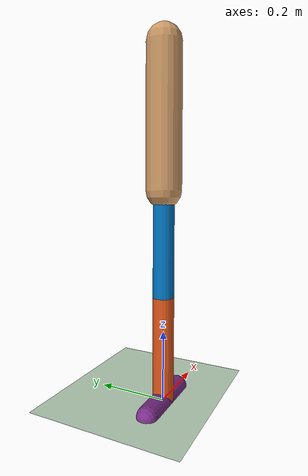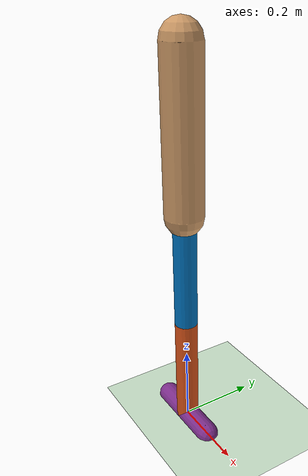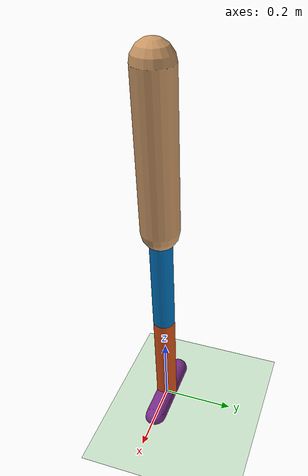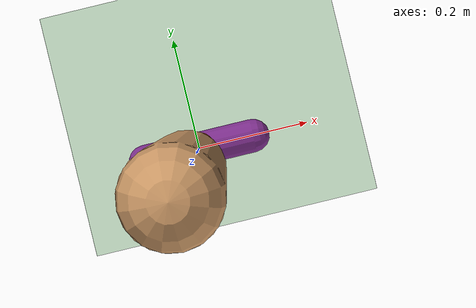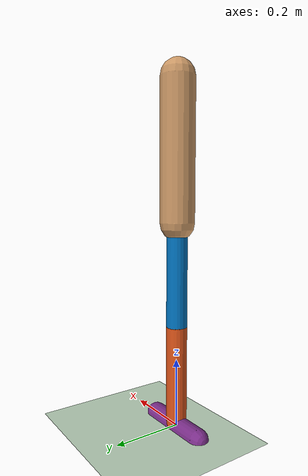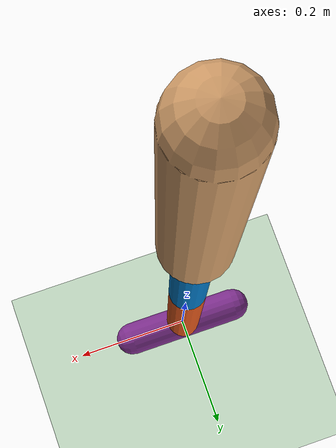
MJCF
<mujoco model="biped_2d">
    <compiler angle="degree" coordinate="local" inertiafromgeom="auto"/>
    <default>
        <joint armature="0" damping="0.0" limited="true" solimplimit="0 .8 .03" solreflimit=".02 1" stiffness="0"/>
        <geom conaffinity="0" condim="3" contype="1" friction=".9 .1 .1" rgba="0.8 0.6 .4 1" solimp="0.0 0.8 0.01"
              solref="0.02 1"/>
        <motor ctrllimited="true" ctrlrange="-1 1"/>
    </default>
    <size nstack="300000" nuser_geom="1"/>
    <option gravity="0 0 -9.81" timestep="0.002"/>
    <asset>
        <texture builtin="gradient" height="100" rgb1="1 1 1" rgb2="0 0 0" type="skybox" width="100"/>
        <texture builtin="flat" height="1278" mark="cross" markrgb="1 1 1" name="texgeom" random="0.01"
                 rgb1="0.8 0.6 0.4" rgb2="0.8 0.6 0.4" type="cube" width="127"/>
        <texture builtin="checker" height="100" name="texplane" rgb1="0 0 0" rgb2="0.8 0.8 0.8" type="2d" width="100"/>
        <material name="MatPlane" reflectance="0.5" shininess="1" specular="1" texrepeat="60 60" texture="texplane"/>
        <material name="geom" texture="texgeom" texuniform="true"/>
    </asset>
    <worldbody>
        <light cutoff="100" diffuse="1 1 1" dir="-0 0 -1.3" directional="true" exponent="1" pos="0 0 1.3"
               specular=".1 .1 .1"/>
        <geom conaffinity="1" condim="3" material="MatPlane" name="floor" pos="0 0 0" rgba="0.8 0.9 0.8 1"
              size="60 60 60" type="plane"/>
        <body name="torso" pos="0 0 0.6">
            <camera name="track" mode="trackcom" pos="0 -3 0.3" xyaxes="1 0 0 0 0 1"/>
            <joint armature="0" axis="1 0 0" damping="0" limited="false" name="rootx" pos="0 0 0" stiffness="0"
                   type="slide"/>
            <joint armature="0" axis="0 0 1" damping="0" limited="false" name="rootz" pos="0 0 0" stiffness="0"
                   type="slide"/>
            <joint armature="0" axis="0 -1 0" damping="0" limited="false" name="rooty" pos="0 0 0" stiffness="0"
                   type="hinge"/>
            <inertial pos="0 0 0.2" mass="12" diaginertia="0.1675 0.1675 0.015"/>
            <geom fromto="0 0 0 0 0 0.4" name="torso" size="0.05" type="capsule"/>
            <body name="lthigh" pos="0 0 0">
                <joint axis="0 -1 0" damping="0.0" name="lthigh" pos="0 0 0" range="-45 135" stiffness="0"
                       type="hinge"/>
                <inertial pos="0 0 -0.15" mass="0.5" diaginertia="0.0039 0.0039 0.000225"/>
                <geom axisangle="0 -1 0 0" name="lthigh" pos="0 0 -0.15" rgba="0 0.4470 0.7410 1"
                      size="0.03 0.15" type="capsule"/>
                <body name="lshin" pos="0 0 -0.3">
                    <joint axis="0 -1 0" damping="0.0" name="lshin" pos="0 0 0" range="-135 0" stiffness="0"
                           type="hinge"/>
                    <inertial pos="0 0 -0.15" mass="0.5" diaginertia="0.0039 0.0039 0.000225"/>
                    <geom axisangle="0 -1 0 0" name="lshin" pos="0 0 -0.15" rgba="0.8500 0.3250 0.0980 1"
                          size="0.03 0.15" type="capsule"/>
                    <body name="lfoot" pos="0 0 -0.3">
                        <joint axis="0 -1 0" damping="0.0" name="lfoot" pos="0 0 0" range="-50 50" stiffness="0"
                               type="hinge"/>
                        <inertial pos="0 0 0" axisangle="0 -1 0 90" mass="0.2" diaginertia="0.0007 0.0007 0.00009"/>
                        <geom axisangle="0 -1 0 90" name="lfoot" pos="0 0 0" rgba="0.4940  0.1840 0.5560 1"
                              size="0.03 0.10" type="capsule"/>
                    </body>
                </body>
            </body>
            <body name="rthigh" pos="0 0 0">
                <joint axis="0 -1 0" damping="0.0" name="rthigh" pos="0 0 0" range="-45 135" stiffness="0"
                       type="hinge"/>
                <inertial pos="0 0 -0.15" mass="0.5" diaginertia="0.0039 0.0039 0.000225"/>
                <geom axisangle="0 -1 0 0" name="rthigh" pos="0 0 -0.15" rgba="0.8500 0.3250 0.0980 1"
                      size="0.03 0.15" type="capsule"/>
                <body name="rshin" pos="0 0 -0.3">
                    <joint axis="0 -1 0" damping="0.0" name="rshin" pos="0 0 0" range="-135 0" stiffness="0"
                           type="hinge"/>
                    <inertial pos="0 0 -0.15" mass="0.5" diaginertia="0.0039 0.0039 0.000225"/>
                    <geom axisangle="0 -1 0 0" name="rshin" pos="0 0 -0.15" rgba="0.4940 0.1840 0.5560 1"
                          size="0.03 0.15" type="capsule"/>
                    <body name="rfoot" pos="0 0 -0.3">
                        <joint axis="0 -1 0" damping="0.0" name="rfoot" pos="0 0 0" range="-50 50" stiffness="0"
                               type="hinge"/>
                        <inertial pos="0 0 0" axisangle="0 -1 0 90" mass="0.2" diaginertia="0.0007 0.0007 0.00009"/>
                        <geom axisangle="0 -1 0 90" name="rfoot" pos="0 0 0" rgba="0 0.4470 0.7410 1"
                              size="0.03 0.10" type="capsule"/>
                    </body>
                </body>
            </body>
        </body>
    </worldbody>
    <actuator>
        <motor ctrllimited="true" ctrlrange="-1.0 1.0" gear="100" joint="lthigh" name="lthigh"/>
        <motor ctrllimited="true" ctrlrange="-1.0 1.0" gear="100" joint="lshin" name="lshin"/>
        <motor ctrllimited="true" ctrlrange="-1.0 1.0" gear="100" joint="lfoot" name="lfoot"/>
        <motor ctrllimited="true" ctrlrange="-1.0 1.0" gear="100" joint="rthigh" name="rthigh"/>
        <motor ctrllimited="true" ctrlrange="-1.0 1.0" gear="100" joint="rshin" name="rshin"/>
        <motor ctrllimited="true" ctrlrange="-1.0 1.0" gear="100" joint="rfoot" name="rfoot"/>
    </actuator>
</mujoco>
